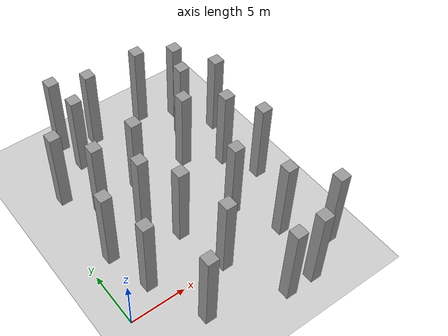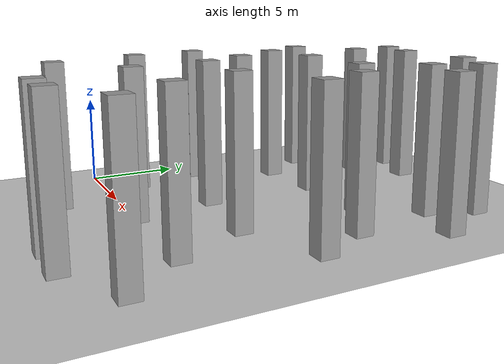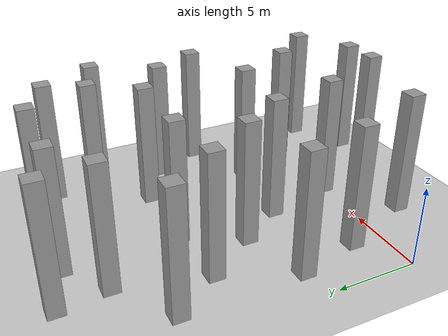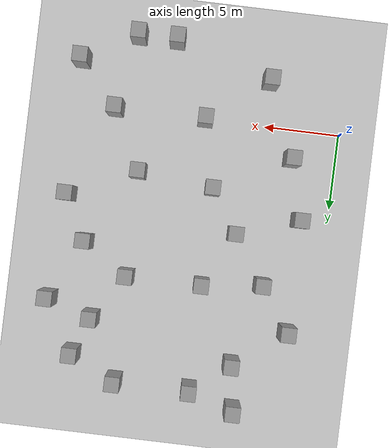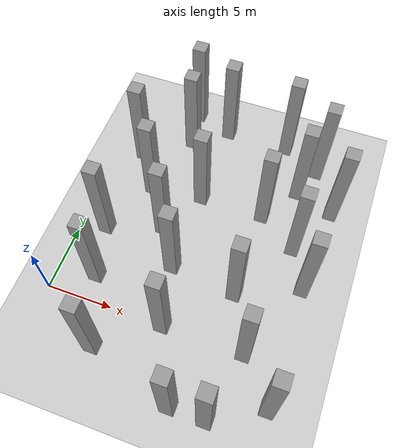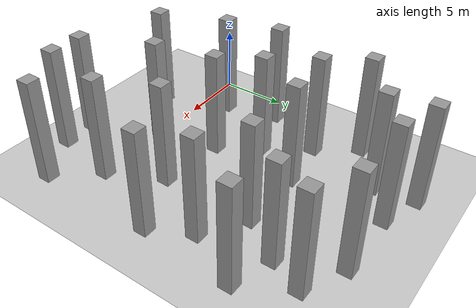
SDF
<sdf version="1.7">
 <world name="default">
  <model name="ground_plane">
   <static>1</static>
   <link name="link">
    <collision name="collision">
     <geometry><plane><normal>0 0 1</normal><size>100 100</size></plane></geometry>
     <surface>
      <contact><collide_bitmask>65535</collide_bitmask></contact>
      <friction><ode><mu>100</mu><mu2>50</mu2></ode></friction>
     </surface>
    </collision>
    <visual name="visual">
     <cast_shadows>0</cast_shadows>
     <geometry><plane><normal>0 0 1</normal><size>100 100</size></plane></geometry>
     <material>
      <script><uri>file://media/materials/scripts/gazebo.material</uri><name>Gazebo/Grey</name></script>
     </material>
    </visual>
   </link>
  </model>
  <model name="unit_box_static_clone_9">
   <link name="link">
    <inertial>
     <mass>1</mass>
     <inertia>
      <ixx>0.166667</ixx>
      <ixy>0</ixy>
      <ixz>0</ixz>
      <iyy>0.166667</iyy>
      <iyz>0</iyz>
      <izz>0.166667</izz>
     </inertia>
    </inertial>
    <visual name="visual">
     <geometry><box><size>1 1 8</size></box></geometry>
     <material>
      <script><name>Gazebo/Grey</name><uri>file://media/materials/scripts/gazebo.material</uri></script>
      <shader type="pixel"/>
     </material>
    </visual>
    <collision name="collision">
     <geometry><box><size>1 1 8</size></box></geometry>
     <surface>
      <friction>
       <ode><mu>1</mu><mu2>1</mu2><fdir1>0 0 0</fdir1><slip1>0</slip1><slip2>0</slip2></ode>
       <torsional>
        <coefficient>1</coefficient>
        <patch_radius>0</patch_radius>
        <surface_radius>0</surface_radius>
        <use_patch_radius>1</use_patch_radius>
        <ode><slip>0</slip></ode>
       </torsional>
      </friction>
      <bounce><restitution_coefficient>0</restitution_coefficient><threshold>1e+06</threshold></bounce>
      <contact>
       <collide_without_contact>0</collide_without_contact>
       <collide_without_contact_bitmask>1</collide_without_contact_bitmask>
       <collide_bitmask>1</collide_bitmask>
       <ode>
        <soft_cfm>0</soft_cfm>
        <soft_erp>0.2</soft_erp>
        <kp>1e+13</kp>
        <kd>1</kd>
        <max_vel>0.01</max_vel>
        <min_depth>0</min_depth>
       </ode>
       <bullet>
        <split_impulse>1</split_impulse>
        <split_impulse_penetration_threshold>-0.01</split_impulse_penetration_threshold>
        <soft_cfm>0</soft_cfm>
        <soft_erp>0.2</soft_erp>
        <kp>1e+13</kp>
        <kd>1</kd>
       </bullet>
      </contact>
     </surface>
    </collision>
   </link>
   <static>1</static>
   <pose>3 2 4 0 -0 0</pose>
  </model>
  <model name="unit_box_static_clone_10">
   <link name="link">
    <inertial>
     <mass>1</mass>
     <inertia>
      <ixx>0.166667</ixx>
      <ixy>0</ixy>
      <ixz>0</ixz>
      <iyy>0.166667</iyy>
      <iyz>0</iyz>
      <izz>0.166667</izz>
     </inertia>
    </inertial>
    <visual name="visual">
     <geometry><box><size>1 1 8</size></box></geometry>
     <material>
      <script><name>Gazebo/Grey</name><uri>file://media/materials/scripts/gazebo.material</uri></script>
      <shader type="pixel"/>
     </material>
    </visual>
    <collision name="collision">
     <geometry><box><size>1 1 8</size></box></geometry>
     <surface>
      <friction>
       <ode><mu>1</mu><mu2>1</mu2><fdir1>0 0 0</fdir1><slip1>0</slip1><slip2>0</slip2></ode>
       <torsional>
        <coefficient>1</coefficient>
        <patch_radius>0</patch_radius>
        <surface_radius>0</surface_radius>
        <use_patch_radius>1</use_patch_radius>
        <ode><slip>0</slip></ode>
       </torsional>
      </friction>
      <bounce><restitution_coefficient>0</restitution_coefficient><threshold>1e+06</threshold></bounce>
      <contact>
       <collide_without_contact>0</collide_without_contact>
       <collide_without_contact_bitmask>1</collide_without_contact_bitmask>
       <collide_bitmask>1</collide_bitmask>
       <ode>
        <soft_cfm>0</soft_cfm>
        <soft_erp>0.2</soft_erp>
        <kp>1e+13</kp>
        <kd>1</kd>
        <max_vel>0.01</max_vel>
        <min_depth>0</min_depth>
       </ode>
       <bullet>
        <split_impulse>1</split_impulse>
        <split_impulse_penetration_threshold>-0.01</split_impulse_penetration_threshold>
        <soft_cfm>0</soft_cfm>
        <soft_erp>0.2</soft_erp>
        <kp>1e+13</kp>
        <kd>1</kd>
       </bullet>
      </contact>
     </surface>
    </collision>
   </link>
   <static>1</static>
   <pose>5 -3 4 0 -0 0</pose>
  </model>
  <model name="unit_box_static_clone_11">
   <link name="link">
    <inertial>
     <mass>1</mass>
     <inertia>
      <ixx>0.166667</ixx>
      <ixy>0</ixy>
      <ixz>0</ixz>
      <iyy>0.166667</iyy>
      <iyz>0</iyz>
      <izz>0.166667</izz>
     </inertia>
    </inertial>
    <visual name="visual">
     <geometry><box><size>1 1 8</size></box></geometry>
     <material>
      <script><name>Gazebo/Grey</name><uri>file://media/materials/scripts/gazebo.material</uri></script>
      <shader type="pixel"/>
     </material>
    </visual>
    <collision name="collision">
     <geometry><box><size>1 1 8</size></box></geometry>
     <surface>
      <friction>
       <ode><mu>1</mu><mu2>1</mu2><fdir1>0 0 0</fdir1><slip1>0</slip1><slip2>0</slip2></ode>
       <torsional>
        <coefficient>1</coefficient>
        <patch_radius>0</patch_radius>
        <surface_radius>0</surface_radius>
        <use_patch_radius>1</use_patch_radius>
        <ode><slip>0</slip></ode>
       </torsional>
      </friction>
      <bounce><restitution_coefficient>0</restitution_coefficient><threshold>1e+06</threshold></bounce>
      <contact>
       <collide_without_contact>0</collide_without_contact>
       <collide_without_contact_bitmask>1</collide_without_contact_bitmask>
       <collide_bitmask>1</collide_bitmask>
       <ode>
        <soft_cfm>0</soft_cfm>
        <soft_erp>0.2</soft_erp>
        <kp>1e+13</kp>
        <kd>1</kd>
        <max_vel>0.01</max_vel>
        <min_depth>0</min_depth>
       </ode>
       <bullet>
        <split_impulse>1</split_impulse>
        <split_impulse_penetration_threshold>-0.01</split_impulse_penetration_threshold>
        <soft_cfm>0</soft_cfm>
        <soft_erp>0.2</soft_erp>
        <kp>1e+13</kp>
        <kd>1</kd>
       </bullet>
      </contact>
     </surface>
    </collision>
   </link>
   <static>1</static>
   <pose>8 4.54489 4 0 -0 0</pose>
  </model>
  <model name="unit_box_static_clone_12">
   <link name="link">
    <inertial>
     <mass>1</mass>
     <inertia>
      <ixx>0.166667</ixx>
      <ixy>0</ixy>
      <ixz>0</ixz>
      <iyy>0.166667</iyy>
      <iyz>0</iyz>
      <izz>0.166667</izz>
     </inertia>
    </inertial>
    <visual name="visual">
     <geometry><box><size>1 1 8</size></box></geometry>
     <material>
      <script><name>Gazebo/Grey</name><uri>file://media/materials/scripts/gazebo.material</uri></script>
      <shader type="pixel"/>
     </material>
    </visual>
    <collision name="collision">
     <geometry><box><size>1 1 8</size></box></geometry>
     <surface>
      <friction>
       <ode><mu>1</mu><mu2>1</mu2><fdir1>0 0 0</fdir1><slip1>0</slip1><slip2>0</slip2></ode>
       <torsional>
        <coefficient>1</coefficient>
        <patch_radius>0</patch_radius>
        <surface_radius>0</surface_radius>
        <use_patch_radius>1</use_patch_radius>
        <ode><slip>0</slip></ode>
       </torsional>
      </friction>
      <bounce><restitution_coefficient>0</restitution_coefficient><threshold>1e+06</threshold></bounce>
      <contact>
       <collide_without_contact>0</collide_without_contact>
       <collide_without_contact_bitmask>1</collide_without_contact_bitmask>
       <collide_bitmask>1</collide_bitmask>
       <ode>
        <soft_cfm>0</soft_cfm>
        <soft_erp>0.2</soft_erp>
        <kp>1e+13</kp>
        <kd>1</kd>
        <max_vel>0.01</max_vel>
        <min_depth>0</min_depth>
       </ode>
       <bullet>
        <split_impulse>1</split_impulse>
        <split_impulse_penetration_threshold>-0.01</split_impulse_penetration_threshold>
        <soft_cfm>0</soft_cfm>
        <soft_erp>0.2</soft_erp>
        <kp>1e+13</kp>
        <kd>1</kd>
       </bullet>
      </contact>
     </surface>
    </collision>
   </link>
   <static>1</static>
   <pose>11.4362 -5 4 0 -0 0</pose>
  </model>
  <model name="unit_box_static_clone_13">
   <link name="link">
    <inertial>
     <mass>1</mass>
     <inertia>
      <ixx>0.166667</ixx>
      <ixy>0</ixy>
      <ixz>0</ixz>
      <iyy>0.166667</iyy>
      <iyz>0</iyz>
      <izz>0.166667</izz>
     </inertia>
    </inertial>
    <visual name="visual">
     <geometry><box><size>1 1 8</size></box></geometry>
     <material>
      <script><name>Gazebo/Grey</name><uri>file://media/materials/scripts/gazebo.material</uri></script>
      <shader type="pixel"/>
     </material>
    </visual>
    <collision name="collision">
     <geometry><box><size>1 1 8</size></box></geometry>
     <surface>
      <friction>
       <ode><mu>1</mu><mu2>1</mu2><fdir1>0 0 0</fdir1><slip1>0</slip1><slip2>0</slip2></ode>
       <torsional>
        <coefficient>1</coefficient>
        <patch_radius>0</patch_radius>
        <surface_radius>0</surface_radius>
        <use_patch_radius>1</use_patch_radius>
        <ode><slip>0</slip></ode>
       </torsional>
      </friction>
      <bounce><restitution_coefficient>0</restitution_coefficient><threshold>1e+06</threshold></bounce>
      <contact>
       <collide_without_contact>0</collide_without_contact>
       <collide_without_contact_bitmask>1</collide_without_contact_bitmask>
       <collide_bitmask>1</collide_bitmask>
       <ode>
        <soft_cfm>0</soft_cfm>
        <soft_erp>0.2</soft_erp>
        <kp>1e+13</kp>
        <kd>1</kd>
        <max_vel>0.01</max_vel>
        <min_depth>0</min_depth>
       </ode>
       <bullet>
        <split_impulse>1</split_impulse>
        <split_impulse_penetration_threshold>-0.01</split_impulse_penetration_threshold>
        <soft_cfm>0</soft_cfm>
        <soft_erp>0.2</soft_erp>
        <kp>1e+13</kp>
        <kd>1</kd>
       </bullet>
      </contact>
     </surface>
    </collision>
   </link>
   <static>1</static>
   <pose>15 0 4 0 -0 0</pose>
  </model>
  <model name="unit_box_static_clone_14">
   <link name="link">
    <inertial>
     <mass>1</mass>
     <inertia>
      <ixx>0.166667</ixx>
      <ixy>0</ixy>
      <ixz>0</ixz>
      <iyy>0.166667</iyy>
      <iyz>0</iyz>
      <izz>0.166667</izz>
     </inertia>
    </inertial>
    <visual name="visual">
     <geometry><box><size>1 1 8</size></box></geometry>
     <material>
      <script><name>Gazebo/Grey</name><uri>file://media/materials/scripts/gazebo.material</uri></script>
      <shader type="pixel"/>
     </material>
    </visual>
    <collision name="collision">
     <geometry><box><size>1 1 8</size></box></geometry>
     <surface>
      <friction>
       <ode><mu>1</mu><mu2>1</mu2><fdir1>0 0 0</fdir1><slip1>0</slip1><slip2>0</slip2></ode>
       <torsional>
        <coefficient>1</coefficient>
        <patch_radius>0</patch_radius>
        <surface_radius>0</surface_radius>
        <use_patch_radius>1</use_patch_radius>
        <ode><slip>0</slip></ode>
       </torsional>
      </friction>
      <bounce><restitution_coefficient>0</restitution_coefficient><threshold>1e+06</threshold></bounce>
      <contact>
       <collide_without_contact>0</collide_without_contact>
       <collide_without_contact_bitmask>1</collide_without_contact_bitmask>
       <collide_bitmask>1</collide_bitmask>
       <ode>
        <soft_cfm>0</soft_cfm>
        <soft_erp>0.2</soft_erp>
        <kp>1e+13</kp>
        <kd>1</kd>
        <max_vel>0.01</max_vel>
        <min_depth>0</min_depth>
       </ode>
       <bullet>
        <split_impulse>1</split_impulse>
        <split_impulse_penetration_threshold>-0.01</split_impulse_penetration_threshold>
        <soft_cfm>0</soft_cfm>
        <soft_erp>0.2</soft_erp>
        <kp>1e+13</kp>
        <kd>1</kd>
       </bullet>
      </contact>
     </surface>
    </collision>
   </link>
   <static>1</static>
   <pose>9 0 4 0 -0 0</pose>
  </model>
  <model name="unit_box_static_clone_27">
   <link name="link">
    <inertial>
     <mass>1</mass>
     <inertia>
      <ixx>0.166667</ixx>
      <ixy>0</ixy>
      <ixz>0</ixz>
      <iyy>0.166667</iyy>
      <iyz>0</iyz>
      <izz>0.166667</izz>
     </inertia>
    </inertial>
    <visual name="visual">
     <geometry><box><size>1 1 8</size></box></geometry>
     <material>
      <script><name>Gazebo/Grey</name><uri>file://media/materials/scripts/gazebo.material</uri></script>
      <shader type="pixel"/>
     </material>
    </visual>
    <collision name="collision">
     <geometry><box><size>1 1 8</size></box></geometry>
     <surface>
      <friction>
       <ode><mu>1</mu><mu2>1</mu2><fdir1>0 0 0</fdir1><slip1>0</slip1><slip2>0</slip2></ode>
       <torsional>
        <coefficient>1</coefficient>
        <patch_radius>0</patch_radius>
        <surface_radius>0</surface_radius>
        <use_patch_radius>1</use_patch_radius>
        <ode><slip>0</slip></ode>
       </torsional>
      </friction>
      <bounce><restitution_coefficient>0</restitution_coefficient><threshold>1e+06</threshold></bounce>
      <contact>
       <collide_without_contact>0</collide_without_contact>
       <collide_without_contact_bitmask>1</collide_without_contact_bitmask>
       <collide_bitmask>1</collide_bitmask>
       <ode>
        <soft_cfm>0</soft_cfm>
        <soft_erp>0.2</soft_erp>
        <kp>1e+13</kp>
        <kd>1</kd>
        <max_vel>0.01</max_vel>
        <min_depth>0</min_depth>
       </ode>
       <bullet>
        <split_impulse>1</split_impulse>
        <split_impulse_penetration_threshold>-0.01</split_impulse_penetration_threshold>
        <soft_cfm>0</soft_cfm>
        <soft_erp>0.2</soft_erp>
        <kp>1e+13</kp>
        <kd>1</kd>
       </bullet>
      </contact>
     </surface>
    </collision>
   </link>
   <static>1</static>
   <pose>14 -5 4 0 -0 0</pose>
  </model>
  <model name="unit_box_static_clone_28">
   <link name="link">
    <inertial>
     <mass>1</mass>
     <inertia>
      <ixx>0.166667</ixx>
      <ixy>0</ixy>
      <ixz>0</ixz>
      <iyy>0.166667</iyy>
      <iyz>0</iyz>
      <izz>0.166667</izz>
     </inertia>
    </inertial>
    <visual name="visual">
     <geometry><box><size>1 1 8</size></box></geometry>
     <material>
      <script><name>Gazebo/Grey</name><uri>file://media/materials/scripts/gazebo.material</uri></script>
      <shader type="pixel"/>
     </material>
    </visual>
    <collision name="collision">
     <geometry><box><size>1 1 8</size></box></geometry>
     <surface>
      <friction>
       <ode><mu>1</mu><mu2>1</mu2><fdir1>0 0 0</fdir1><slip1>0</slip1><slip2>0</slip2></ode>
       <torsional>
        <coefficient>1</coefficient>
        <patch_radius>0</patch_radius>
        <surface_radius>0</surface_radius>
        <use_patch_radius>1</use_patch_radius>
        <ode><slip>0</slip></ode>
       </torsional>
      </friction>
      <bounce><restitution_coefficient>0</restitution_coefficient><threshold>1e+06</threshold></bounce>
      <contact>
       <collide_without_contact>0</collide_without_contact>
       <collide_without_contact_bitmask>1</collide_without_contact_bitmask>
       <collide_bitmask>1</collide_bitmask>
       <ode>
        <soft_cfm>0</soft_cfm>
        <soft_erp>0.2</soft_erp>
        <kp>1e+13</kp>
        <kd>1</kd>
        <max_vel>0.01</max_vel>
        <min_depth>0</min_depth>
       </ode>
       <bullet>
        <split_impulse>1</split_impulse>
        <split_impulse_penetration_threshold>-0.01</split_impulse_penetration_threshold>
        <soft_cfm>0</soft_cfm>
        <soft_erp>0.2</soft_erp>
        <kp>1e+13</kp>
        <kd>1</kd>
       </bullet>
      </contact>
     </surface>
    </collision>
   </link>
   <static>1</static>
   <pose>13 11 4 0 -0 0</pose>
  </model>
  <model name="unit_box_static_clone_29">
   <link name="link">
    <inertial>
     <mass>1</mass>
     <inertia>
      <ixx>0.166667</ixx>
      <ixy>0</ixy>
      <ixz>0</ixz>
      <iyy>0.166667</iyy>
      <iyz>0</iyz>
      <izz>0.166667</izz>
     </inertia>
    </inertial>
    <visual name="visual">
     <geometry><box><size>1 1 8</size></box></geometry>
     <material>
      <script><name>Gazebo/Grey</name><uri>file://media/materials/scripts/gazebo.material</uri></script>
      <shader type="pixel"/>
     </material>
    </visual>
    <collision name="collision">
     <geometry><box><size>1 1 8</size></box></geometry>
     <surface>
      <friction>
       <ode><mu>1</mu><mu2>1</mu2><fdir1>0 0 0</fdir1><slip1>0</slip1><slip2>0</slip2></ode>
       <torsional>
        <coefficient>1</coefficient>
        <patch_radius>0</patch_radius>
        <surface_radius>0</surface_radius>
        <use_patch_radius>1</use_patch_radius>
        <ode><slip>0</slip></ode>
       </torsional>
      </friction>
      <bounce><restitution_coefficient>0</restitution_coefficient><threshold>1e+06</threshold></bounce>
      <contact>
       <collide_without_contact>0</collide_without_contact>
       <collide_without_contact_bitmask>1</collide_without_contact_bitmask>
       <collide_bitmask>1</collide_bitmask>
       <ode>
        <soft_cfm>0</soft_cfm>
        <soft_erp>0.2</soft_erp>
        <kp>1e+13</kp>
        <kd>1</kd>
        <max_vel>0.01</max_vel>
        <min_depth>0</min_depth>
       </ode>
       <bullet>
        <split_impulse>1</split_impulse>
        <split_impulse_penetration_threshold>-0.01</split_impulse_penetration_threshold>
        <soft_cfm>0</soft_cfm>
        <soft_erp>0.2</soft_erp>
        <kp>1e+13</kp>
        <kd>1</kd>
       </bullet>
      </contact>
     </surface>
    </collision>
   </link>
   <static>1</static>
   <pose>4 10.5519 4 0 -0 0</pose>
  </model>
  <model name="unit_box_static_clone_30">
   <link name="link">
    <inertial>
     <mass>1</mass>
     <inertia>
      <ixx>0.166667</ixx>
      <ixy>0</ixy>
      <ixz>0</ixz>
      <iyy>0.166667</iyy>
      <iyz>0</iyz>
      <izz>0.166667</izz>
     </inertia>
    </inertial>
    <visual name="visual">
     <geometry><box><size>1 1 8</size></box></geometry>
     <material>
      <script><name>Gazebo/Grey</name><uri>file://media/materials/scripts/gazebo.material</uri></script>
      <shader type="pixel"/>
     </material>
    </visual>
    <collision name="collision">
     <geometry><box><size>1 1 8</size></box></geometry>
     <surface>
      <friction>
       <ode><mu>1</mu><mu2>1</mu2><fdir1>0 0 0</fdir1><slip1>0</slip1><slip2>0</slip2></ode>
       <torsional>
        <coefficient>1</coefficient>
        <patch_radius>0</patch_radius>
        <surface_radius>0</surface_radius>
        <use_patch_radius>1</use_patch_radius>
        <ode><slip>0</slip></ode>
       </torsional>
      </friction>
      <bounce><restitution_coefficient>0</restitution_coefficient><threshold>1e+06</threshold></bounce>
      <contact>
       <collide_without_contact>0</collide_without_contact>
       <collide_without_contact_bitmask>1</collide_without_contact_bitmask>
       <collide_bitmask>1</collide_bitmask>
       <ode>
        <soft_cfm>0</soft_cfm>
        <soft_erp>0.2</soft_erp>
        <kp>1e+13</kp>
        <kd>1</kd>
        <max_vel>0.01</max_vel>
        <min_depth>0</min_depth>
       </ode>
       <bullet>
        <split_impulse>1</split_impulse>
        <split_impulse_penetration_threshold>-0.01</split_impulse_penetration_threshold>
        <soft_cfm>0</soft_cfm>
        <soft_erp>0.2</soft_erp>
        <kp>1e+13</kp>
        <kd>1</kd>
       </bullet>
      </contact>
     </surface>
    </collision>
   </link>
   <static>1</static>
   <pose>2 13.475 4 0 -0 0</pose>
  </model>
  <model name="unit_box_static_clone_42">
   <link name="link">
    <inertial>
     <mass>1</mass>
     <inertia>
      <ixx>0.166667</ixx>
      <ixy>0</ixy>
      <ixz>0</ixz>
      <iyy>0.166667</iyy>
      <iyz>0</iyz>
      <izz>0.166667</izz>
     </inertia>
    </inertial>
    <visual name="visual">
     <geometry><box><size>1 1 8</size></box></geometry>
     <material>
      <script><name>Gazebo/Grey</name><uri>file://media/materials/scripts/gazebo.material</uri></script>
      <shader type="pixel"/>
     </material>
    </visual>
    <collision name="collision">
     <geometry><box><size>1 1 8</size></box></geometry>
     <surface>
      <friction>
       <ode><mu>1</mu><mu2>1</mu2><fdir1>0 0 0</fdir1><slip1>0</slip1><slip2>0</slip2></ode>
       <torsional>
        <coefficient>1</coefficient>
        <patch_radius>0</patch_radius>
        <surface_radius>0</surface_radius>
        <use_patch_radius>1</use_patch_radius>
        <ode><slip>0</slip></ode>
       </torsional>
      </friction>
      <bounce><restitution_coefficient>0</restitution_coefficient><threshold>1e+06</threshold></bounce>
      <contact>
       <collide_without_contact>0</collide_without_contact>
       <collide_without_contact_bitmask>1</collide_without_contact_bitmask>
       <collide_bitmask>1</collide_bitmask>
       <ode>
        <soft_cfm>0</soft_cfm>
        <soft_erp>0.2</soft_erp>
        <kp>1e+13</kp>
        <kd>1</kd>
        <max_vel>0.01</max_vel>
        <min_depth>0</min_depth>
       </ode>
       <bullet>
        <split_impulse>1</split_impulse>
        <split_impulse_penetration_threshold>-0.01</split_impulse_penetration_threshold>
        <soft_cfm>0</soft_cfm>
        <soft_erp>0.2</soft_erp>
        <kp>1e+13</kp>
        <kd>1</kd>
       </bullet>
      </contact>
     </surface>
    </collision>
   </link>
   <static>1</static>
   <pose>5 19 4 0 -0 0</pose>
  </model>
  <model name="unit_box_static_clone_44">
   <link name="link">
    <inertial>
     <mass>1</mass>
     <inertia>
      <ixx>0.166667</ixx>
      <ixy>0</ixy>
      <ixz>0</ixz>
      <iyy>0.166667</iyy>
      <iyz>0</iyz>
      <izz>0.166667</izz>
     </inertia>
    </inertial>
    <visual name="visual">
     <geometry><box><size>1 1 8</size></box></geometry>
     <material>
      <script><name>Gazebo/Grey</name><uri>file://media/materials/scripts/gazebo.material</uri></script>
      <shader type="pixel"/>
     </material>
    </visual>
    <collision name="collision">
     <geometry><box><size>1 1 8</size></box></geometry>
     <surface>
      <friction>
       <ode><mu>1</mu><mu2>1</mu2><fdir1>0 0 0</fdir1><slip1>0</slip1><slip2>0</slip2></ode>
       <torsional>
        <coefficient>1</coefficient>
        <patch_radius>0</patch_radius>
        <surface_radius>0</surface_radius>
        <use_patch_radius>1</use_patch_radius>
        <ode><slip>0</slip></ode>
       </torsional>
      </friction>
      <bounce><restitution_coefficient>0</restitution_coefficient><threshold>1e+06</threshold></bounce>
      <contact>
       <collide_without_contact>0</collide_without_contact>
       <collide_without_contact_bitmask>1</collide_without_contact_bitmask>
       <collide_bitmask>1</collide_bitmask>
       <ode>
        <soft_cfm>0</soft_cfm>
        <soft_erp>0.2</soft_erp>
        <kp>1e+13</kp>
        <kd>1</kd>
        <max_vel>0.01</max_vel>
        <min_depth>0</min_depth>
       </ode>
       <bullet>
        <split_impulse>1</split_impulse>
        <split_impulse_penetration_threshold>-0.01</split_impulse_penetration_threshold>
        <soft_cfm>0</soft_cfm>
        <soft_erp>0.2</soft_erp>
        <kp>1e+13</kp>
        <kd>1</kd>
       </bullet>
      </contact>
     </surface>
    </collision>
   </link>
   <static>1</static>
   <pose>5.42861 16 4 0 -0 0</pose>
  </model>
  <model name="unit_box_static_clone_45">
   <link name="link">
    <inertial>
     <mass>1</mass>
     <inertia>
      <ixx>0.166667</ixx>
      <ixy>0</ixy>
      <ixz>0</ixz>
      <iyy>0.166667</iyy>
      <iyz>0</iyz>
      <izz>0.166667</izz>
     </inertia>
    </inertial>
    <visual name="visual">
     <geometry><box><size>1 1 8</size></box></geometry>
     <material>
      <script><name>Gazebo/Grey</name><uri>file://media/materials/scripts/gazebo.material</uri></script>
      <shader type="pixel"/>
     </material>
    </visual>
    <collision name="collision">
     <geometry><box><size>1 1 8</size></box></geometry>
     <surface>
      <friction>
       <ode><mu>1</mu><mu2>1</mu2><fdir1>0 0 0</fdir1><slip1>0</slip1><slip2>0</slip2></ode>
       <torsional>
        <coefficient>1</coefficient>
        <patch_radius>0</patch_radius>
        <surface_radius>0</surface_radius>
        <use_patch_radius>1</use_patch_radius>
        <ode><slip>0</slip></ode>
       </torsional>
      </friction>
      <bounce><restitution_coefficient>0</restitution_coefficient><threshold>1e+06</threshold></bounce>
      <contact>
       <collide_without_contact>0</collide_without_contact>
       <collide_without_contact_bitmask>1</collide_without_contact_bitmask>
       <collide_bitmask>1</collide_bitmask>
       <ode>
        <soft_cfm>0</soft_cfm>
        <soft_erp>0.2</soft_erp>
        <kp>1e+13</kp>
        <kd>1</kd>
        <max_vel>0.01</max_vel>
        <min_depth>0</min_depth>
       </ode>
       <bullet>
        <split_impulse>1</split_impulse>
        <split_impulse_penetration_threshold>-0.01</split_impulse_penetration_threshold>
        <soft_cfm>0</soft_cfm>
        <soft_erp>0.2</soft_erp>
        <kp>1e+13</kp>
        <kd>1</kd>
       </bullet>
      </contact>
     </surface>
    </collision>
   </link>
   <static>1</static>
   <pose>8 18 4 0 -0 0</pose>
  </model>
  <model name="unit_box_static_clone_46">
   <link name="link">
    <inertial>
     <mass>1</mass>
     <inertia>
      <ixx>0.166667</ixx>
      <ixy>0</ixy>
      <ixz>0</ixz>
      <iyy>0.166667</iyy>
      <iyz>0</iyz>
      <izz>0.166667</izz>
     </inertia>
    </inertial>
    <visual name="visual">
     <geometry><box><size>1 1 8</size></box></geometry>
     <material>
      <script><name>Gazebo/Grey</name><uri>file://media/materials/scripts/gazebo.material</uri></script>
      <shader type="pixel"/>
     </material>
    </visual>
    <collision name="collision">
     <geometry><box><size>1 1 8</size></box></geometry>
     <surface>
      <friction>
       <ode><mu>1</mu><mu2>1</mu2><fdir1>0 0 0</fdir1><slip1>0</slip1><slip2>0</slip2></ode>
       <torsional>
        <coefficient>1</coefficient>
        <patch_radius>0</patch_radius>
        <surface_radius>0</surface_radius>
        <use_patch_radius>1</use_patch_radius>
        <ode><slip>0</slip></ode>
       </torsional>
      </friction>
      <bounce><restitution_coefficient>0</restitution_coefficient><threshold>1e+06</threshold></bounce>
      <contact>
       <collide_without_contact>0</collide_without_contact>
       <collide_without_contact_bitmask>1</collide_without_contact_bitmask>
       <collide_bitmask>1</collide_bitmask>
       <ode>
        <soft_cfm>0</soft_cfm>
        <soft_erp>0.2</soft_erp>
        <kp>1e+13</kp>
        <kd>1</kd>
        <max_vel>0.01</max_vel>
        <min_depth>0</min_depth>
       </ode>
       <bullet>
        <split_impulse>1</split_impulse>
        <split_impulse_penetration_threshold>-0.01</split_impulse_penetration_threshold>
        <soft_cfm>0</soft_cfm>
        <soft_erp>0.2</soft_erp>
        <kp>1e+13</kp>
        <kd>1</kd>
       </bullet>
      </contact>
     </surface>
    </collision>
   </link>
   <static>1</static>
   <pose>13 18 4 0 -0 0</pose>
  </model>
  <model name="unit_box_static_clone_47">
   <link name="link">
    <inertial>
     <mass>1</mass>
     <inertia>
      <ixx>0.166667</ixx>
      <ixy>0</ixy>
      <ixz>0</ixz>
      <iyy>0.166667</iyy>
      <iyz>0</iyz>
      <izz>0.166667</izz>
     </inertia>
    </inertial>
    <visual name="visual">
     <geometry><box><size>1 1 8</size></box></geometry>
     <material>
      <script><name>Gazebo/Grey</name><uri>file://media/materials/scripts/gazebo.material</uri></script>
      <shader type="pixel"/>
     </material>
    </visual>
    <collision name="collision">
     <geometry><box><size>1 1 8</size></box></geometry>
     <surface>
      <friction>
       <ode><mu>1</mu><mu2>1</mu2><fdir1>0 0 0</fdir1><slip1>0</slip1><slip2>0</slip2></ode>
       <torsional>
        <coefficient>1</coefficient>
        <patch_radius>0</patch_radius>
        <surface_radius>0</surface_radius>
        <use_patch_radius>1</use_patch_radius>
        <ode><slip>0</slip></ode>
       </torsional>
      </friction>
      <bounce><restitution_coefficient>0</restitution_coefficient><threshold>1e+06</threshold></bounce>
      <contact>
       <collide_without_contact>0</collide_without_contact>
       <collide_without_contact_bitmask>1</collide_without_contact_bitmask>
       <collide_bitmask>1</collide_bitmask>
       <ode>
        <soft_cfm>0</soft_cfm>
        <soft_erp>0.2</soft_erp>
        <kp>1e+13</kp>
        <kd>1</kd>
        <max_vel>0.01</max_vel>
        <min_depth>0</min_depth>
       </ode>
       <bullet>
        <split_impulse>1</split_impulse>
        <split_impulse_penetration_threshold>-0.01</split_impulse_penetration_threshold>
        <soft_cfm>0</soft_cfm>
        <soft_erp>0.2</soft_erp>
        <kp>1e+13</kp>
        <kd>1</kd>
       </bullet>
      </contact>
     </surface>
    </collision>
   </link>
   <static>1</static>
   <pose>15 14 4 0 -0 0</pose>
  </model>
  <model name="unit_box_static_clone_48">
   <link name="link">
    <inertial>
     <mass>1</mass>
     <inertia>
      <ixx>0.166667</ixx>
      <ixy>0</ixy>
      <ixz>0</ixz>
      <iyy>0.166667</iyy>
      <iyz>0</iyz>
      <izz>0.166667</izz>
     </inertia>
    </inertial>
    <visual name="visual">
     <geometry><box><size>1 1 8</size></box></geometry>
     <material>
      <script><name>Gazebo/Grey</name><uri>file://media/materials/scripts/gazebo.material</uri></script>
      <shader type="pixel"/>
     </material>
    </visual>
    <collision name="collision">
     <geometry><box><size>1 1 8</size></box></geometry>
     <surface>
      <friction>
       <ode><mu>1</mu><mu2>1</mu2><fdir1>0 0 0</fdir1><slip1>0</slip1><slip2>0</slip2></ode>
       <torsional>
        <coefficient>1</coefficient>
        <patch_radius>0</patch_radius>
        <surface_radius>0</surface_radius>
        <use_patch_radius>1</use_patch_radius>
        <ode><slip>0</slip></ode>
       </torsional>
      </friction>
      <bounce><restitution_coefficient>0</restitution_coefficient><threshold>1e+06</threshold></bounce>
      <contact>
       <collide_without_contact>0</collide_without_contact>
       <collide_without_contact_bitmask>1</collide_without_contact_bitmask>
       <collide_bitmask>1</collide_bitmask>
       <ode>
        <soft_cfm>0</soft_cfm>
        <soft_erp>0.2</soft_erp>
        <kp>1e+13</kp>
        <kd>1</kd>
        <max_vel>0.01</max_vel>
        <min_depth>0</min_depth>
       </ode>
       <bullet>
        <split_impulse>1</split_impulse>
        <split_impulse_penetration_threshold>-0.01</split_impulse_penetration_threshold>
        <soft_cfm>0</soft_cfm>
        <soft_erp>0.2</soft_erp>
        <kp>1e+13</kp>
        <kd>1</kd>
       </bullet>
      </contact>
     </surface>
    </collision>
   </link>
   <static>1</static>
   <pose>16 16.4796 4 0 -0 0</pose>
  </model>
  <model name="unit_box_static_clone_49">
   <link name="link">
    <inertial>
     <mass>1</mass>
     <inertia>
      <ixx>0.166667</ixx>
      <ixy>0</ixy>
      <ixz>0</ixz>
      <iyy>0.166667</iyy>
      <iyz>0</iyz>
      <izz>0.166667</izz>
     </inertia>
    </inertial>
    <visual name="visual">
     <geometry><box><size>1 1 8</size></box></geometry>
     <material>
      <script><name>Gazebo/Grey</name><uri>file://media/materials/scripts/gazebo.material</uri></script>
      <shader type="pixel"/>
     </material>
    </visual>
    <collision name="collision">
     <geometry><box><size>1 1 8</size></box></geometry>
     <surface>
      <friction>
       <ode><mu>1</mu><mu2>1</mu2><fdir1>0 0 0</fdir1><slip1>0</slip1><slip2>0</slip2></ode>
       <torsional>
        <coefficient>1</coefficient>
        <patch_radius>0</patch_radius>
        <surface_radius>0</surface_radius>
        <use_patch_radius>1</use_patch_radius>
        <ode><slip>0</slip></ode>
       </torsional>
      </friction>
      <bounce><restitution_coefficient>0</restitution_coefficient><threshold>1e+06</threshold></bounce>
      <contact>
       <collide_without_contact>0</collide_without_contact>
       <collide_without_contact_bitmask>1</collide_without_contact_bitmask>
       <collide_bitmask>1</collide_bitmask>
       <ode>
        <soft_cfm>0</soft_cfm>
        <soft_erp>0.2</soft_erp>
        <kp>1e+13</kp>
        <kd>1</kd>
        <max_vel>0.01</max_vel>
        <min_depth>0</min_depth>
       </ode>
       <bullet>
        <split_impulse>1</split_impulse>
        <split_impulse_penetration_threshold>-0.01</split_impulse_penetration_threshold>
        <soft_cfm>0</soft_cfm>
        <soft_erp>0.2</soft_erp>
        <kp>1e+13</kp>
        <kd>1</kd>
       </bullet>
      </contact>
     </surface>
    </collision>
   </link>
   <static>1</static>
   <pose>18 13 4 0 -0 0</pose>
  </model>
  <model name="unit_box_static_clone_50">
   <link name="link">
    <inertial>
     <mass>1</mass>
     <inertia>
      <ixx>0.166667</ixx>
      <ixy>0</ixy>
      <ixz>0</ixz>
      <iyy>0.166667</iyy>
      <iyz>0</iyz>
      <izz>0.166667</izz>
     </inertia>
    </inertial>
    <visual name="visual">
     <geometry><box><size>1 1 8</size></box></geometry>
     <material>
      <script><name>Gazebo/Grey</name><uri>file://media/materials/scripts/gazebo.material</uri></script>
      <shader type="pixel"/>
     </material>
    </visual>
    <collision name="collision">
     <geometry><box><size>1 1 8</size></box></geometry>
     <surface>
      <friction>
       <ode><mu>1</mu><mu2>1</mu2><fdir1>0 0 0</fdir1><slip1>0</slip1><slip2>0</slip2></ode>
       <torsional>
        <coefficient>1</coefficient>
        <patch_radius>0</patch_radius>
        <surface_radius>0</surface_radius>
        <use_patch_radius>1</use_patch_radius>
        <ode><slip>0</slip></ode>
       </torsional>
      </friction>
      <bounce><restitution_coefficient>0</restitution_coefficient><threshold>1e+06</threshold></bounce>
      <contact>
       <collide_without_contact>0</collide_without_contact>
       <collide_without_contact_bitmask>1</collide_without_contact_bitmask>
       <collide_bitmask>1</collide_bitmask>
       <ode>
        <soft_cfm>0</soft_cfm>
        <soft_erp>0.2</soft_erp>
        <kp>1e+13</kp>
        <kd>1</kd>
        <max_vel>0.01</max_vel>
        <min_depth>0</min_depth>
       </ode>
       <bullet>
        <split_impulse>1</split_impulse>
        <split_impulse_penetration_threshold>-0.01</split_impulse_penetration_threshold>
        <soft_cfm>0</soft_cfm>
        <soft_erp>0.2</soft_erp>
        <kp>1e+13</kp>
        <kd>1</kd>
       </bullet>
      </contact>
     </surface>
    </collision>
   </link>
   <static>1</static>
   <pose>17.5252 6 4 0 -0 0</pose>
  </model>
  <model name="unit_box_static_clone_51">
   <link name="link">
    <inertial>
     <mass>1</mass>
     <inertia>
      <ixx>0.166667</ixx>
      <ixy>0</ixy>
      <ixz>0</ixz>
      <iyy>0.166667</iyy>
      <iyz>0</iyz>
      <izz>0.166667</izz>
     </inertia>
    </inertial>
    <visual name="visual">
     <geometry><box><size>1 1 8</size></box></geometry>
     <material>
      <script><name>Gazebo/Grey</name><uri>file://media/materials/scripts/gazebo.material</uri></script>
      <shader type="pixel"/>
     </material>
    </visual>
    <collision name="collision">
     <geometry><box><size>1 1 8</size></box></geometry>
     <surface>
      <friction>
       <ode><mu>1</mu><mu2>1</mu2><fdir1>0 0 0</fdir1><slip1>0</slip1><slip2>0</slip2></ode>
       <torsional>
        <coefficient>1</coefficient>
        <patch_radius>0</patch_radius>
        <surface_radius>0</surface_radius>
        <use_patch_radius>1</use_patch_radius>
        <ode><slip>0</slip></ode>
       </torsional>
      </friction>
      <bounce><restitution_coefficient>0</restitution_coefficient><threshold>1e+06</threshold></bounce>
      <contact>
       <collide_without_contact>0</collide_without_contact>
       <collide_without_contact_bitmask>1</collide_without_contact_bitmask>
       <collide_bitmask>1</collide_bitmask>
       <ode>
        <soft_cfm>0</soft_cfm>
        <soft_erp>0.2</soft_erp>
        <kp>1e+13</kp>
        <kd>1</kd>
        <max_vel>0.01</max_vel>
        <min_depth>0</min_depth>
       </ode>
       <bullet>
        <split_impulse>1</split_impulse>
        <split_impulse_penetration_threshold>-0.01</split_impulse_penetration_threshold>
        <soft_cfm>0</soft_cfm>
        <soft_erp>0.2</soft_erp>
        <kp>1e+13</kp>
        <kd>1</kd>
       </bullet>
      </contact>
     </surface>
    </collision>
   </link>
   <static>1</static>
   <pose>16 9 4 0 -0 0</pose>
  </model>
  <model name="unit_box_static_clone_52">
   <link name="link">
    <inertial>
     <mass>1</mass>
     <inertia>
      <ixx>0.166667</ixx>
      <ixy>0</ixy>
      <ixz>0</ixz>
      <iyy>0.166667</iyy>
      <iyz>0</iyz>
      <izz>0.166667</izz>
     </inertia>
    </inertial>
    <visual name="visual">
     <geometry><box><size>1 1 8</size></box></geometry>
     <material>
      <script><name>Gazebo/Grey</name><uri>file://media/materials/scripts/gazebo.material</uri></script>
      <shader type="pixel"/>
     </material>
    </visual>
    <collision name="collision">
     <geometry><box><size>1 1 8</size></box></geometry>
     <surface>
      <friction>
       <ode><mu>1</mu><mu2>1</mu2><fdir1>0 0 0</fdir1><slip1>0</slip1><slip2>0</slip2></ode>
       <torsional>
        <coefficient>1</coefficient>
        <patch_radius>0</patch_radius>
        <surface_radius>0</surface_radius>
        <use_patch_radius>1</use_patch_radius>
        <ode><slip>0</slip></ode>
       </torsional>
      </friction>
      <bounce><restitution_coefficient>0</restitution_coefficient><threshold>1e+06</threshold></bounce>
      <contact>
       <collide_without_contact>0</collide_without_contact>
       <collide_without_contact_bitmask>1</collide_without_contact_bitmask>
       <collide_bitmask>1</collide_bitmask>
       <ode>
        <soft_cfm>0</soft_cfm>
        <soft_erp>0.2</soft_erp>
        <kp>1e+13</kp>
        <kd>1</kd>
        <max_vel>0.01</max_vel>
        <min_depth>0</min_depth>
       </ode>
       <bullet>
        <split_impulse>1</split_impulse>
        <split_impulse_penetration_threshold>-0.01</split_impulse_penetration_threshold>
        <soft_cfm>0</soft_cfm>
        <soft_erp>0.2</soft_erp>
        <kp>1e+13</kp>
        <kd>1</kd>
       </bullet>
      </contact>
     </surface>
    </collision>
   </link>
   <static>1</static>
   <pose>13 4 4 0 -0 0</pose>
  </model>
  <model name="unit_box_static_clone_53">
   <link name="link">
    <inertial>
     <mass>1</mass>
     <inertia>
      <ixx>0.166667</ixx>
      <ixy>0</ixy>
      <ixz>0</ixz>
      <iyy>0.166667</iyy>
      <iyz>0</iyz>
      <izz>0.166667</izz>
     </inertia>
    </inertial>
    <visual name="visual">
     <geometry><box><size>1 1 8</size></box></geometry>
     <material>
      <script><name>Gazebo/Grey</name><uri>file://media/materials/scripts/gazebo.material</uri></script>
      <shader type="pixel"/>
     </material>
    </visual>
    <collision name="collision">
     <geometry><box><size>1 1 8</size></box></geometry>
     <surface>
      <friction>
       <ode><mu>1</mu><mu2>1</mu2><fdir1>0 0 0</fdir1><slip1>0</slip1><slip2>0</slip2></ode>
       <torsional>
        <coefficient>1</coefficient>
        <patch_radius>0</patch_radius>
        <surface_radius>0</surface_radius>
        <use_patch_radius>1</use_patch_radius>
        <ode><slip>0</slip></ode>
       </torsional>
      </friction>
      <bounce><restitution_coefficient>0</restitution_coefficient><threshold>1e+06</threshold></bounce>
      <contact>
       <collide_without_contact>0</collide_without_contact>
       <collide_without_contact_bitmask>1</collide_without_contact_bitmask>
       <collide_bitmask>1</collide_bitmask>
       <ode>
        <soft_cfm>0</soft_cfm>
        <soft_erp>0.2</soft_erp>
        <kp>1e+13</kp>
        <kd>1</kd>
        <max_vel>0.01</max_vel>
        <min_depth>0</min_depth>
       </ode>
       <bullet>
        <split_impulse>1</split_impulse>
        <split_impulse_penetration_threshold>-0.01</split_impulse_penetration_threshold>
        <soft_cfm>0</soft_cfm>
        <soft_erp>0.2</soft_erp>
        <kp>1e+13</kp>
        <kd>1</kd>
       </bullet>
      </contact>
     </surface>
    </collision>
   </link>
   <static>1</static>
   <pose>2 6 4 0 -0 0</pose>
  </model>
  <model name="unit_box_static_clone_54">
   <link name="link">
    <inertial>
     <mass>1</mass>
     <inertia>
      <ixx>0.166667</ixx>
      <ixy>0</ixy>
      <ixz>0</ixz>
      <iyy>0.166667</iyy>
      <iyz>0</iyz>
      <izz>0.166667</izz>
     </inertia>
    </inertial>
    <visual name="visual">
     <geometry><box><size>1 1 8</size></box></geometry>
     <material>
      <script><name>Gazebo/Grey</name><uri>file://media/materials/scripts/gazebo.material</uri></script>
      <shader type="pixel"/>
     </material>
    </visual>
    <collision name="collision">
     <geometry><box><size>1 1 8</size></box></geometry>
     <surface>
      <friction>
       <ode><mu>1</mu><mu2>1</mu2><fdir1>0 0 0</fdir1><slip1>0</slip1><slip2>0</slip2></ode>
       <torsional>
        <coefficient>1</coefficient>
        <patch_radius>0</patch_radius>
        <surface_radius>0</surface_radius>
        <use_patch_radius>1</use_patch_radius>
        <ode><slip>0</slip></ode>
       </torsional>
      </friction>
      <bounce><restitution_coefficient>0</restitution_coefficient><threshold>1e+06</threshold></bounce>
      <contact>
       <collide_without_contact>0</collide_without_contact>
       <collide_without_contact_bitmask>1</collide_without_contact_bitmask>
       <collide_bitmask>1</collide_bitmask>
       <ode>
        <soft_cfm>0</soft_cfm>
        <soft_erp>0.2</soft_erp>
        <kp>1e+13</kp>
        <kd>1</kd>
        <max_vel>0.01</max_vel>
        <min_depth>0</min_depth>
       </ode>
       <bullet>
        <split_impulse>1</split_impulse>
        <split_impulse_penetration_threshold>-0.01</split_impulse_penetration_threshold>
        <soft_cfm>0</soft_cfm>
        <soft_erp>0.2</soft_erp>
        <kp>1e+13</kp>
        <kd>1</kd>
       </bullet>
      </contact>
     </surface>
    </collision>
   </link>
   <static>1</static>
   <pose>8 11 4 0 -0 0</pose>
  </model>
  <model name="unit_box_static_clone_63">
   <link name="link">
    <inertial>
     <mass>1</mass>
     <inertia>
      <ixx>0.166667</ixx>
      <ixy>0</ixy>
      <ixz>0</ixz>
      <iyy>0.166667</iyy>
      <iyz>0</iyz>
      <izz>0.166667</izz>
     </inertia>
    </inertial>
    <visual name="visual">
     <geometry><box><size>1 1 8</size></box></geometry>
     <material>
      <script><name>Gazebo/Grey</name><uri>file://media/materials/scripts/gazebo.material</uri></script>
      <shader type="pixel"/>
     </material>
    </visual>
    <collision name="collision">
     <geometry><box><size>1 1 8</size></box></geometry>
     <surface>
      <friction>
       <ode><mu>1</mu><mu2>1</mu2><fdir1>0 0 0</fdir1><slip1>0</slip1><slip2>0</slip2></ode>
       <torsional>
        <coefficient>1</coefficient>
        <patch_radius>0</patch_radius>
        <surface_radius>0</surface_radius>
        <use_patch_radius>1</use_patch_radius>
        <ode><slip>0</slip></ode>
       </torsional>
      </friction>
      <bounce><restitution_coefficient>0</restitution_coefficient><threshold>1e+06</threshold></bounce>
      <contact>
       <collide_without_contact>0</collide_without_contact>
       <collide_without_contact_bitmask>1</collide_without_contact_bitmask>
       <collide_bitmask>1</collide_bitmask>
       <ode>
        <soft_cfm>0</soft_cfm>
        <soft_erp>0.2</soft_erp>
        <kp>1e+13</kp>
        <kd>1</kd>
        <max_vel>0.01</max_vel>
        <min_depth>0</min_depth>
       </ode>
       <bullet>
        <split_impulse>1</split_impulse>
        <split_impulse_penetration_threshold>-0.01</split_impulse_penetration_threshold>
        <soft_cfm>0</soft_cfm>
        <soft_erp>0.2</soft_erp>
        <kp>1e+13</kp>
        <kd>1</kd>
       </bullet>
      </contact>
     </surface>
    </collision>
   </link>
   <static>1</static>
   <pose>17.5862 -3 4 0 -0 0</pose>
  </model>
  <model name="unit_box_static_clone_68">
   <link name="link">
    <inertial>
     <mass>1</mass>
     <inertia>
      <ixx>0.166667</ixx>
      <ixy>0</ixy>
      <ixz>0</ixz>
      <iyy>0.166667</iyy>
      <iyz>0</iyz>
      <izz>0.166667</izz>
     </inertia>
    </inertial>
    <visual name="visual">
     <geometry><box><size>1 1 8</size></box></geometry>
     <material>
      <script><name>Gazebo/Grey</name><uri>file://media/materials/scripts/gazebo.material</uri></script>
      <shader type="pixel"/>
     </material>
    </visual>
    <collision name="collision">
     <geometry><box><size>1 1 8</size></box></geometry>
     <surface>
      <friction>
       <ode><mu>1</mu><mu2>1</mu2><fdir1>0 0 0</fdir1><slip1>0</slip1><slip2>0</slip2></ode>
       <torsional>
        <coefficient>1</coefficient>
        <patch_radius>0</patch_radius>
        <surface_radius>0</surface_radius>
        <use_patch_radius>1</use_patch_radius>
        <ode><slip>0</slip></ode>
       </torsional>
      </friction>
      <bounce><restitution_coefficient>0</restitution_coefficient><threshold>1e+06</threshold></bounce>
      <contact>
       <collide_without_contact>0</collide_without_contact>
       <collide_without_contact_bitmask>1</collide_without_contact_bitmask>
       <collide_bitmask>1</collide_bitmask>
       <ode>
        <soft_cfm>0</soft_cfm>
        <soft_erp>0.2</soft_erp>
        <kp>1e+13</kp>
        <kd>1</kd>
        <max_vel>0.01</max_vel>
        <min_depth>0</min_depth>
       </ode>
       <bullet>
        <split_impulse>1</split_impulse>
        <split_impulse_penetration_threshold>-0.01</split_impulse_penetration_threshold>
        <soft_cfm>0</soft_cfm>
        <soft_erp>0.2</soft_erp>
        <kp>1e+13</kp>
        <kd>1</kd>
       </bullet>
      </contact>
     </surface>
    </collision>
   </link>
   <static>1</static>
   <pose>6.146 7.37477 4 0 -0 0</pose>
  </model>
 </world>
</sdf>
